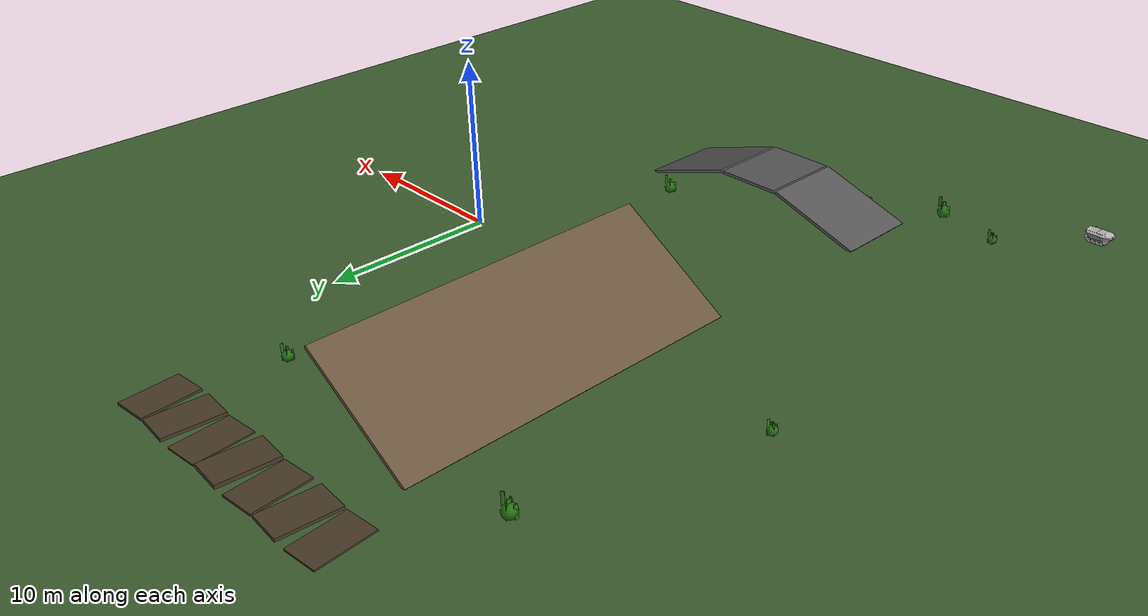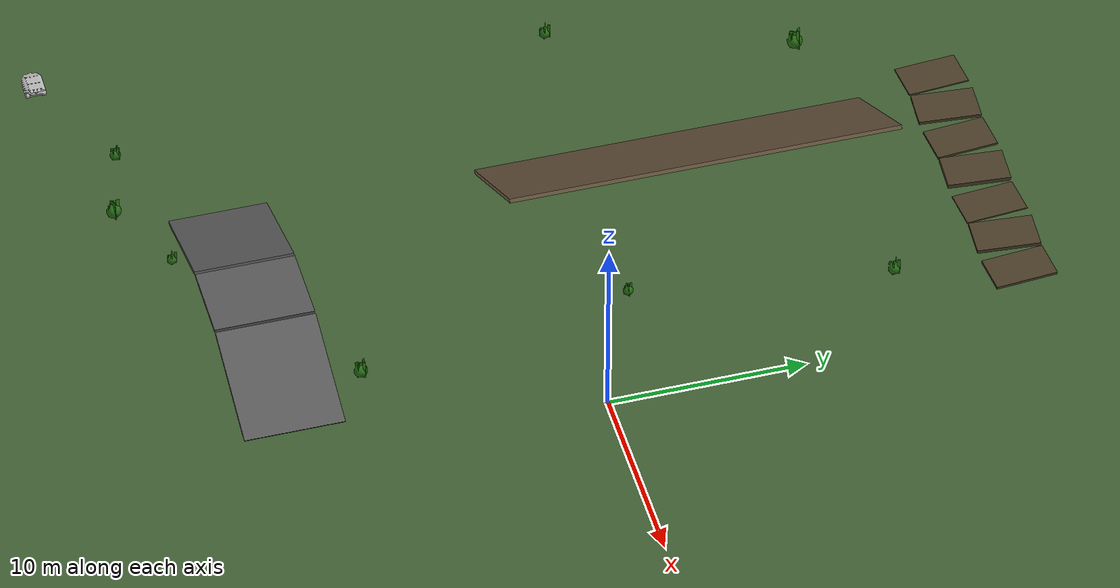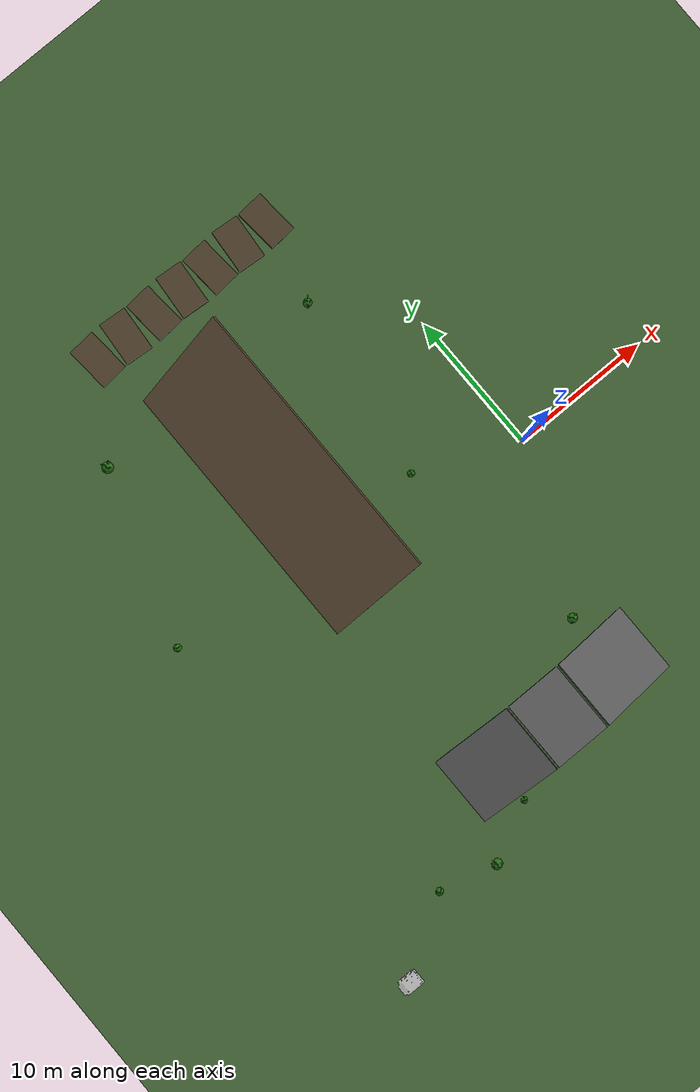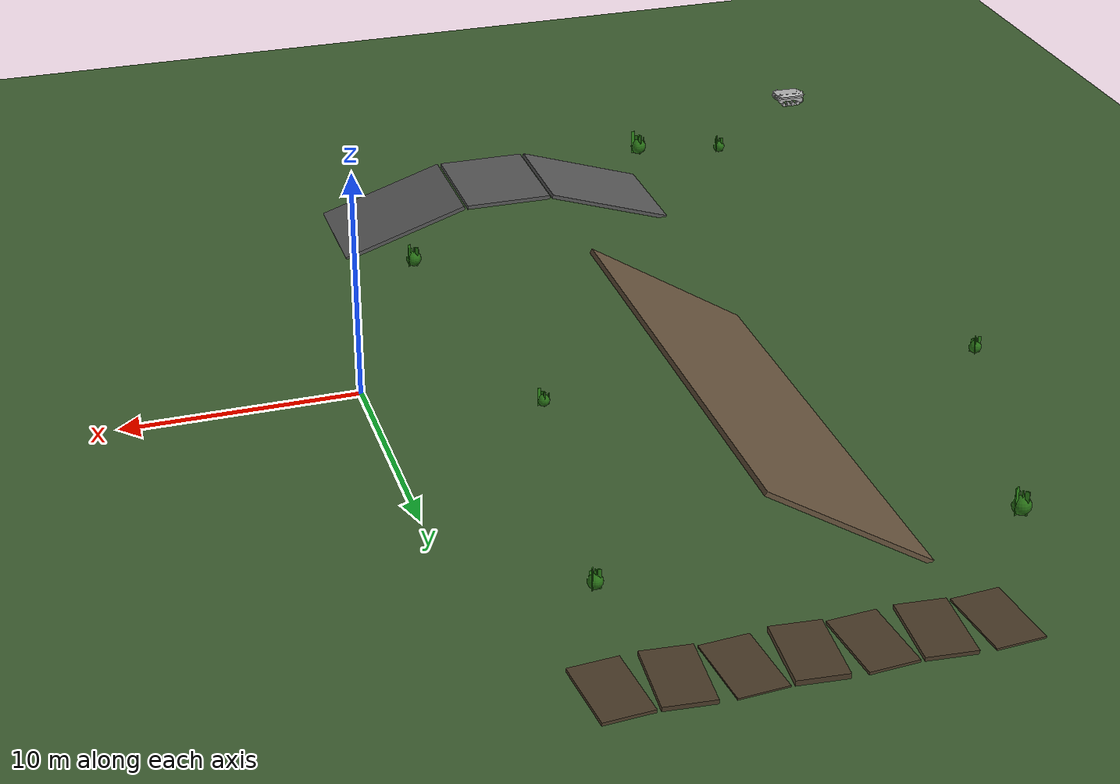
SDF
<sdf version="1.9">
 <world name="rollover_v2">
  <model name="ground">
   <static>true</static>
   <link name="link">
    <collision name="collision">
     <geometry><plane><normal>0 0 1</normal><size>80 60</size></plane></geometry>
     <surface><friction><ode><mu>.85</mu><mu2>.65</mu2></ode></friction></surface>
    </collision>
    <visual name="visual">
     <geometry><plane><normal>0 0 1</normal><size>80 60</size></plane></geometry>
     <material><ambient>.25 .38 .20 1</ambient><diffuse>.25 .38 .20 1</diffuse></material>
    </visual>
   </link>
  </model>
  <model name="mound_18deg_up">
   <static>true</static>
   <pose>-15.0 -15.0 0.8414558966582784 0 -0.3141592653589793 0</pose>
   <link name="link">
    <collision name="collision">
     <geometry><box><size>6 5 0.18</size></box></geometry>
     <surface><friction><ode><mu>0.9</mu><mu2>0.7</mu2></ode></friction></surface>
    </collision>
    <visual name="visual">
     <geometry><box><size>6 5 0.18</size></box></geometry>
     <material><ambient>0.35 0.35 0.35 1</ambient><diffuse>0.35 0.35 0.35 1</diffuse></material>
    </visual>
   </link>
  </model>
  <model name="mound_18deg_top">
   <static>true</static>
   <pose>-10 -15 1.7641019662496842 0 0 0</pose>
   <link name="link">
    <collision name="collision">
     <geometry><box><size>4 5 0.18</size></box></geometry>
     <surface><friction><ode><mu>0.9</mu><mu2>0.7</mu2></ode></friction></surface>
    </collision>
    <visual name="visual">
     <geometry><box><size>4 5 0.18</size></box></geometry>
     <material><ambient>0.35 0.35 0.35 1</ambient><diffuse>0.35 0.35 0.35 1</diffuse></material>
    </visual>
   </link>
  </model>
  <model name="mound_18deg_down">
   <static>true</static>
   <pose>-5.0 -15.0 0.8414558966582784 0 0.3141592653589793 0</pose>
   <link name="link">
    <collision name="collision">
     <geometry><box><size>6 5 0.18</size></box></geometry>
     <surface><friction><ode><mu>0.9</mu><mu2>0.7</mu2></ode></friction></surface>
    </collision>
    <visual name="visual">
     <geometry><box><size>6 5 0.18</size></box></geometry>
     <material><ambient>0.35 0.35 0.35 1</ambient><diffuse>0.35 0.35 0.35 1</diffuse></material>
    </visual>
   </link>
  </model>
  <model name="long_cross_slope">
   <static>true</static>
   <pose>-14 8 2.034872247317177 0 -0.5585053606381855 0</pose>
   <link name="link">
    <collision name="collision">
     <geometry><box><size>8 20 0.2</size></box></geometry>
     <surface><friction><ode><mu>0.9</mu><mu2>0.7</mu2></ode></friction></surface>
    </collision>
    <visual name="visual">
     <geometry><box><size>8 20 0.2</size></box></geometry>
     <material><ambient>0.42 0.34 0.25 1</ambient><diffuse>0.42 0.34 0.25 1</diffuse></material>
    </visual>
   </link>
  </model>
  <model name="rough_patch_0">
   <static>true</static>
   <pose>-18.0 22 0.04 0 0 0.08</pose>
   <link name="link">
    <collision name="collision">
     <geometry><box><size>2.0 3.2 0.08</size></box></geometry>
     <surface><friction><ode><mu>0.9</mu><mu2>0.7</mu2></ode></friction></surface>
    </collision>
    <visual name="visual">
     <geometry><box><size>2.0 3.2 0.08</size></box></geometry>
     <material><ambient>0.30 0.24 0.16 1</ambient><diffuse>0.30 0.24 0.16 1</diffuse></material>
    </visual>
   </link>
  </model>
  <model name="rough_patch_1">
   <static>true</static>
   <pose>-15.6 22 0.08 0 0 -0.08</pose>
   <link name="link">
    <collision name="collision">
     <geometry><box><size>2.0 3.2 0.16</size></box></geometry>
     <surface><friction><ode><mu>0.9</mu><mu2>0.7</mu2></ode></friction></surface>
    </collision>
    <visual name="visual">
     <geometry><box><size>2.0 3.2 0.16</size></box></geometry>
     <material><ambient>0.30 0.24 0.16 1</ambient><diffuse>0.30 0.24 0.16 1</diffuse></material>
    </visual>
   </link>
  </model>
  <model name="rough_patch_2">
   <static>true</static>
   <pose>-13.2 22 0.055 0 0 0.08</pose>
   <link name="link">
    <collision name="collision">
     <geometry><box><size>2.0 3.2 0.11</size></box></geometry>
     <surface><friction><ode><mu>0.9</mu><mu2>0.7</mu2></ode></friction></surface>
    </collision>
    <visual name="visual">
     <geometry><box><size>2.0 3.2 0.11</size></box></geometry>
     <material><ambient>0.30 0.24 0.16 1</ambient><diffuse>0.30 0.24 0.16 1</diffuse></material>
    </visual>
   </link>
  </model>
  <model name="rough_patch_3">
   <static>true</static>
   <pose>-10.8 22 0.11 0 0 -0.08</pose>
   <link name="link">
    <collision name="collision">
     <geometry><box><size>2.0 3.2 0.22</size></box></geometry>
     <surface><friction><ode><mu>0.9</mu><mu2>0.7</mu2></ode></friction></surface>
    </collision>
    <visual name="visual">
     <geometry><box><size>2.0 3.2 0.22</size></box></geometry>
     <material><ambient>0.30 0.24 0.16 1</ambient><diffuse>0.30 0.24 0.16 1</diffuse></material>
    </visual>
   </link>
  </model>
  <model name="rough_patch_4">
   <static>true</static>
   <pose>-8.4 22 0.035 0 0 0.08</pose>
   <link name="link">
    <collision name="collision">
     <geometry><box><size>2.0 3.2 0.07</size></box></geometry>
     <surface><friction><ode><mu>0.9</mu><mu2>0.7</mu2></ode></friction></surface>
    </collision>
    <visual name="visual">
     <geometry><box><size>2.0 3.2 0.07</size></box></geometry>
     <material><ambient>0.30 0.24 0.16 1</ambient><diffuse>0.30 0.24 0.16 1</diffuse></material>
    </visual>
   </link>
  </model>
  <model name="rough_patch_5">
   <static>true</static>
   <pose>-6.0 22 0.09 0 0 -0.08</pose>
   <link name="link">
    <collision name="collision">
     <geometry><box><size>2.0 3.2 0.18</size></box></geometry>
     <surface><friction><ode><mu>0.9</mu><mu2>0.7</mu2></ode></friction></surface>
    </collision>
    <visual name="visual">
     <geometry><box><size>2.0 3.2 0.18</size></box></geometry>
     <material><ambient>0.30 0.24 0.16 1</ambient><diffuse>0.30 0.24 0.16 1</diffuse></material>
    </visual>
   </link>
  </model>
  <model name="rough_patch_6">
   <static>true</static>
   <pose>-3.6000000000000014 22 0.065 0 0 0.08</pose>
   <link name="link">
    <collision name="collision">
     <geometry><box><size>2.0 3.2 0.13</size></box></geometry>
     <surface><friction><ode><mu>0.9</mu><mu2>0.7</mu2></ode></friction></surface>
    </collision>
    <visual name="visual">
     <geometry><box><size>2.0 3.2 0.13</size></box></geometry>
     <material><ambient>0.30 0.24 0.16 1</ambient><diffuse>0.30 0.24 0.16 1</diffuse></material>
    </visual>
   </link>
  </model>
  <model name="traversable_vegetation_0">
   <static>true</static>
   <pose>-23 -19 0 0 0 0.2</pose>
   <link name="vegetation_link">
    <visual name="blade_0">
     <pose>-0.2 -0.096 0.26 0 0.035 0.0</pose>
     <geometry><box><size>0.028000000000000004 0.128 0.52</size></box></geometry>
     <material><ambient>.12 .38 .07 1</ambient><diffuse>.18 .52 .10 1</diffuse></material>
    </visual>
    <visual name="blade_1">
     <pose>-0.064 0.144 0.36000000000000004 0 -0.05 0.73</pose>
     <geometry><box><size>0.028000000000000004 0.128 0.7200000000000001</size></box></geometry>
     <material><ambient>.12 .38 .07 1</ambient><diffuse>.18 .52 .10 1</diffuse></material>
    </visual>
    <visual name="blade_2">
     <pose>0.08000000000000002 -0.144 0.30000000000000004 0 0.07 1.46</pose>
     <geometry><box><size>0.028000000000000004 0.128 0.6000000000000001</size></box></geometry>
     <material><ambient>.12 .38 .07 1</ambient><diffuse>.18 .52 .10 1</diffuse></material>
    </visual>
    <visual name="blade_3">
     <pose>0.192 0.08000000000000002 0.42000000000000004 0 -0.03 2.19</pose>
     <geometry><box><size>0.028000000000000004 0.128 0.8400000000000001</size></box></geometry>
     <material><ambient>.12 .38 .07 1</ambient><diffuse>.18 .52 .10 1</diffuse></material>
    </visual>
    <visual name="blade_4">
     <pose>0.0 0.0 0.328 0 0.02 2.92</pose>
     <geometry><box><size>0.028000000000000004 0.128 0.656</size></box></geometry>
     <material><ambient>.12 .38 .07 1</ambient><diffuse>.18 .52 .10 1</diffuse></material>
    </visual>
    <visual name="bush_core">
     <pose>0 0 0.22400000000000003 0 0 0</pose>
     <geometry><sphere><radius>0.272</radius></sphere></geometry>
     <material><ambient>.10 .30 .06 1</ambient><diffuse>.15 .43 .08 1</diffuse></material>
    </visual>
   </link>
  </model>
  <model name="traversable_vegetation_1">
   <static>true</static>
   <pose>-19 -20 0 0 0 -0.4</pose>
   <link name="vegetation_link">
    <visual name="blade_0">
     <pose>-0.275 -0.132 0.35750000000000004 0 0.035 0.0</pose>
     <geometry><box><size>0.038500000000000006 0.17600000000000002 0.7150000000000001</size></box></geometry>
     <material><ambient>.12 .38 .07 1</ambient><diffuse>.18 .52 .10 1</diffuse></material>
    </visual>
    <visual name="blade_1">
     <pose>-0.08800000000000001 0.198 0.49500000000000005 0 -0.05 0.73</pose>
     <geometry><box><size>0.038500000000000006 0.17600000000000002 0.9900000000000001</size></box></geometry>
     <material><ambient>.12 .38 .07 1</ambient><diffuse>.18 .52 .10 1</diffuse></material>
    </visual>
    <visual name="blade_2">
     <pose>0.11000000000000001 -0.198 0.41250000000000003 0 0.07 1.46</pose>
     <geometry><box><size>0.038500000000000006 0.17600000000000002 0.8250000000000001</size></box></geometry>
     <material><ambient>.12 .38 .07 1</ambient><diffuse>.18 .52 .10 1</diffuse></material>
    </visual>
    <visual name="blade_3">
     <pose>0.264 0.11000000000000001 0.5775000000000001 0 -0.03 2.19</pose>
     <geometry><box><size>0.038500000000000006 0.17600000000000002 1.1550000000000002</size></box></geometry>
     <material><ambient>.12 .38 .07 1</ambient><diffuse>.18 .52 .10 1</diffuse></material>
    </visual>
    <visual name="blade_4">
     <pose>0.0 0.0 0.451 0 0.02 2.92</pose>
     <geometry><box><size>0.038500000000000006 0.17600000000000002 0.902</size></box></geometry>
     <material><ambient>.12 .38 .07 1</ambient><diffuse>.18 .52 .10 1</diffuse></material>
    </visual>
    <visual name="bush_core">
     <pose>0 0 0.30800000000000005 0 0 0</pose>
     <geometry><sphere><radius>0.37400000000000005</radius></sphere></geometry>
     <material><ambient>.10 .30 .06 1</ambient><diffuse>.15 .43 .08 1</diffuse></material>
    </visual>
   </link>
  </model>
  <model name="traversable_vegetation_2">
   <static>true</static>
   <pose>-15 -18 0 0 0 0.8</pose>
   <link name="vegetation_link">
    <visual name="blade_0">
     <pose>-0.175 -0.08399999999999999 0.22749999999999998 0 0.035 0.0</pose>
     <geometry><box><size>0.0245 0.11199999999999999 0.45499999999999996</size></box></geometry>
     <material><ambient>.12 .38 .07 1</ambient><diffuse>.18 .52 .10 1</diffuse></material>
    </visual>
    <visual name="blade_1">
     <pose>-0.055999999999999994 0.126 0.315 0 -0.05 0.73</pose>
     <geometry><box><size>0.0245 0.11199999999999999 0.63</size></box></geometry>
     <material><ambient>.12 .38 .07 1</ambient><diffuse>.18 .52 .10 1</diffuse></material>
    </visual>
    <visual name="blade_2">
     <pose>0.06999999999999999 -0.126 0.26249999999999996 0 0.07 1.46</pose>
     <geometry><box><size>0.0245 0.11199999999999999 0.5249999999999999</size></box></geometry>
     <material><ambient>.12 .38 .07 1</ambient><diffuse>.18 .52 .10 1</diffuse></material>
    </visual>
    <visual name="blade_3">
     <pose>0.16799999999999998 0.06999999999999999 0.3675 0 -0.03 2.19</pose>
     <geometry><box><size>0.0245 0.11199999999999999 0.735</size></box></geometry>
     <material><ambient>.12 .38 .07 1</ambient><diffuse>.18 .52 .10 1</diffuse></material>
    </visual>
    <visual name="blade_4">
     <pose>0.0 0.0 0.287 0 0.02 2.92</pose>
     <geometry><box><size>0.0245 0.11199999999999999 0.574</size></box></geometry>
     <material><ambient>.12 .38 .07 1</ambient><diffuse>.18 .52 .10 1</diffuse></material>
    </visual>
    <visual name="bush_core">
     <pose>0 0 0.196 0 0 0</pose>
     <geometry><sphere><radius>0.238</radius></sphere></geometry>
     <material><ambient>.10 .30 .06 1</ambient><diffuse>.15 .43 .08 1</diffuse></material>
    </visual>
   </link>
  </model>
  <model name="traversable_vegetation_3">
   <static>true</static>
   <pose>-5 -11 0 0 0 0.1</pose>
   <link name="vegetation_link">
    <visual name="blade_0">
     <pose>-0.25 -0.12 0.325 0 0.035 0.0</pose>
     <geometry><box><size>0.035 0.16 0.65</size></box></geometry>
     <material><ambient>.12 .38 .07 1</ambient><diffuse>.18 .52 .10 1</diffuse></material>
    </visual>
    <visual name="blade_1">
     <pose>-0.08 0.18 0.45 0 -0.05 0.73</pose>
     <geometry><box><size>0.035 0.16 0.9</size></box></geometry>
     <material><ambient>.12 .38 .07 1</ambient><diffuse>.18 .52 .10 1</diffuse></material>
    </visual>
    <visual name="blade_2">
     <pose>0.1 -0.18 0.375 0 0.07 1.46</pose>
     <geometry><box><size>0.035 0.16 0.75</size></box></geometry>
     <material><ambient>.12 .38 .07 1</ambient><diffuse>.18 .52 .10 1</diffuse></material>
    </visual>
    <visual name="blade_3">
     <pose>0.24 0.1 0.525 0 -0.03 2.19</pose>
     <geometry><box><size>0.035 0.16 1.05</size></box></geometry>
     <material><ambient>.12 .38 .07 1</ambient><diffuse>.18 .52 .10 1</diffuse></material>
    </visual>
    <visual name="blade_4">
     <pose>0.0 0.0 0.41 0 0.02 2.92</pose>
     <geometry><box><size>0.035 0.16 0.82</size></box></geometry>
     <material><ambient>.12 .38 .07 1</ambient><diffuse>.18 .52 .10 1</diffuse></material>
    </visual>
    <visual name="bush_core">
     <pose>0 0 0.28 0 0 0</pose>
     <geometry><sphere><radius>0.34</radius></sphere></geometry>
     <material><ambient>.10 .30 .06 1</ambient><diffuse>.15 .43 .08 1</diffuse></material>
    </visual>
   </link>
  </model>
  <model name="traversable_vegetation_10">
   <static>true</static>
   <pose>-5 16 0 0 0 0.4</pose>
   <link name="vegetation_link">
    <visual name="blade_0">
     <pose>-0.225 -0.108 0.29250000000000004 0 0.035 0.0</pose>
     <geometry><box><size>0.03150000000000001 0.14400000000000002 0.5850000000000001</size></box></geometry>
     <material><ambient>.12 .38 .07 1</ambient><diffuse>.18 .52 .10 1</diffuse></material>
    </visual>
    <visual name="blade_1">
     <pose>-0.07200000000000001 0.162 0.405 0 -0.05 0.73</pose>
     <geometry><box><size>0.03150000000000001 0.14400000000000002 0.81</size></box></geometry>
     <material><ambient>.12 .38 .07 1</ambient><diffuse>.18 .52 .10 1</diffuse></material>
    </visual>
    <visual name="blade_2">
     <pose>0.09000000000000001 -0.162 0.3375 0 0.07 1.46</pose>
     <geometry><box><size>0.03150000000000001 0.14400000000000002 0.675</size></box></geometry>
     <material><ambient>.12 .38 .07 1</ambient><diffuse>.18 .52 .10 1</diffuse></material>
    </visual>
    <visual name="blade_3">
     <pose>0.216 0.09000000000000001 0.47250000000000003 0 -0.03 2.19</pose>
     <geometry><box><size>0.03150000000000001 0.14400000000000002 0.9450000000000001</size></box></geometry>
     <material><ambient>.12 .38 .07 1</ambient><diffuse>.18 .52 .10 1</diffuse></material>
    </visual>
    <visual name="blade_4">
     <pose>0.0 0.0 0.369 0 0.02 2.92</pose>
     <geometry><box><size>0.03150000000000001 0.14400000000000002 0.738</size></box></geometry>
     <material><ambient>.12 .38 .07 1</ambient><diffuse>.18 .52 .10 1</diffuse></material>
    </visual>
    <visual name="bush_core">
     <pose>0 0 0.25200000000000006 0 0 0</pose>
     <geometry><sphere><radius>0.30600000000000005</radius></sphere></geometry>
     <material><ambient>.10 .30 .06 1</ambient><diffuse>.15 .43 .08 1</diffuse></material>
    </visual>
   </link>
  </model>
  <model name="traversable_vegetation_11">
   <static>true</static>
   <pose>-22 16 0 0 0 -0.1</pose>
   <link name="vegetation_link">
    <visual name="blade_0">
     <pose>-0.2875 -0.13799999999999998 0.37374999999999997 0 0.035 0.0</pose>
     <geometry><box><size>0.04025 0.184 0.7474999999999999</size></box></geometry>
     <material><ambient>.12 .38 .07 1</ambient><diffuse>.18 .52 .10 1</diffuse></material>
    </visual>
    <visual name="blade_1">
     <pose>-0.092 0.207 0.5175 0 -0.05 0.73</pose>
     <geometry><box><size>0.04025 0.184 1.035</size></box></geometry>
     <material><ambient>.12 .38 .07 1</ambient><diffuse>.18 .52 .10 1</diffuse></material>
    </visual>
    <visual name="blade_2">
     <pose>0.11499999999999999 -0.207 0.43124999999999997 0 0.07 1.46</pose>
     <geometry><box><size>0.04025 0.184 0.8624999999999999</size></box></geometry>
     <material><ambient>.12 .38 .07 1</ambient><diffuse>.18 .52 .10 1</diffuse></material>
    </visual>
    <visual name="blade_3">
     <pose>0.27599999999999997 0.11499999999999999 0.60375 0 -0.03 2.19</pose>
     <geometry><box><size>0.04025 0.184 1.2075</size></box></geometry>
     <material><ambient>.12 .38 .07 1</ambient><diffuse>.18 .52 .10 1</diffuse></material>
    </visual>
    <visual name="blade_4">
     <pose>0.0 0.0 0.4714999999999999 0 0.02 2.92</pose>
     <geometry><box><size>0.04025 0.184 0.9429999999999998</size></box></geometry>
     <material><ambient>.12 .38 .07 1</ambient><diffuse>.18 .52 .10 1</diffuse></material>
    </visual>
    <visual name="bush_core">
     <pose>0 0 0.322 0 0 0</pose>
     <geometry><sphere><radius>0.391</radius></sphere></geometry>
     <material><ambient>.10 .30 .06 1</ambient><diffuse>.15 .43 .08 1</diffuse></material>
    </visual>
   </link>
  </model>
  <model name="traversable_vegetation_12">
   <static>true</static>
   <pose>-26 4 0 0 0 0.6</pose>
   <link name="vegetation_link">
    <visual name="blade_0">
     <pose>-0.2 -0.096 0.26 0 0.035 0.0</pose>
     <geometry><box><size>0.028000000000000004 0.128 0.52</size></box></geometry>
     <material><ambient>.12 .38 .07 1</ambient><diffuse>.18 .52 .10 1</diffuse></material>
    </visual>
    <visual name="blade_1">
     <pose>-0.064 0.144 0.36000000000000004 0 -0.05 0.73</pose>
     <geometry><box><size>0.028000000000000004 0.128 0.7200000000000001</size></box></geometry>
     <material><ambient>.12 .38 .07 1</ambient><diffuse>.18 .52 .10 1</diffuse></material>
    </visual>
    <visual name="blade_2">
     <pose>0.08000000000000002 -0.144 0.30000000000000004 0 0.07 1.46</pose>
     <geometry><box><size>0.028000000000000004 0.128 0.6000000000000001</size></box></geometry>
     <material><ambient>.12 .38 .07 1</ambient><diffuse>.18 .52 .10 1</diffuse></material>
    </visual>
    <visual name="blade_3">
     <pose>0.192 0.08000000000000002 0.42000000000000004 0 -0.03 2.19</pose>
     <geometry><box><size>0.028000000000000004 0.128 0.8400000000000001</size></box></geometry>
     <material><ambient>.12 .38 .07 1</ambient><diffuse>.18 .52 .10 1</diffuse></material>
    </visual>
    <visual name="blade_4">
     <pose>0.0 0.0 0.328 0 0.02 2.92</pose>
     <geometry><box><size>0.028000000000000004 0.128 0.656</size></box></geometry>
     <material><ambient>.12 .38 .07 1</ambient><diffuse>.18 .52 .10 1</diffuse></material>
    </visual>
    <visual name="bush_core">
     <pose>0 0 0.22400000000000003 0 0 0</pose>
     <geometry><sphere><radius>0.272</radius></sphere></geometry>
     <material><ambient>.10 .30 .06 1</ambient><diffuse>.15 .43 .08 1</diffuse></material>
    </visual>
   </link>
  </model>
  <model name="traversable_vegetation_13">
   <static>true</static>
   <pose>-7 3 0 0 0 -0.5</pose>
   <link name="vegetation_link">
    <visual name="blade_0">
     <pose>-0.1875 -0.09 0.24375000000000002 0 0.035 0.0</pose>
     <geometry><box><size>0.026250000000000002 0.12 0.48750000000000004</size></box></geometry>
     <material><ambient>.12 .38 .07 1</ambient><diffuse>.18 .52 .10 1</diffuse></material>
    </visual>
    <visual name="blade_1">
     <pose>-0.06 0.135 0.3375 0 -0.05 0.73</pose>
     <geometry><box><size>0.026250000000000002 0.12 0.675</size></box></geometry>
     <material><ambient>.12 .38 .07 1</ambient><diffuse>.18 .52 .10 1</diffuse></material>
    </visual>
    <visual name="blade_2">
     <pose>0.07500000000000001 -0.135 0.28125 0 0.07 1.46</pose>
     <geometry><box><size>0.026250000000000002 0.12 0.5625</size></box></geometry>
     <material><ambient>.12 .38 .07 1</ambient><diffuse>.18 .52 .10 1</diffuse></material>
    </visual>
    <visual name="blade_3">
     <pose>0.18 0.07500000000000001 0.39375000000000004 0 -0.03 2.19</pose>
     <geometry><box><size>0.026250000000000002 0.12 0.7875000000000001</size></box></geometry>
     <material><ambient>.12 .38 .07 1</ambient><diffuse>.18 .52 .10 1</diffuse></material>
    </visual>
    <visual name="blade_4">
     <pose>0.0 0.0 0.3075 0 0.02 2.92</pose>
     <geometry><box><size>0.026250000000000002 0.12 0.615</size></box></geometry>
     <material><ambient>.12 .38 .07 1</ambient><diffuse>.18 .52 .10 1</diffuse></material>
    </visual>
    <visual name="bush_core">
     <pose>0 0 0.21000000000000002 0 0 0</pose>
     <geometry><sphere><radius>0.255</radius></sphere></geometry>
     <material><ambient>.10 .30 .06 1</ambient><diffuse>.15 .43 .08 1</diffuse></material>
    </visual>
   </link>
  </model>
  <include><uri>model://rover_v2</uri><name>rover_v2</name><pose>-28 -22 .8 0 0 0</pose></include>
 </world>
</sdf>
